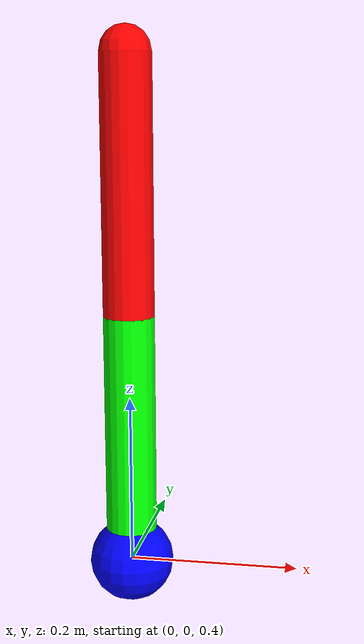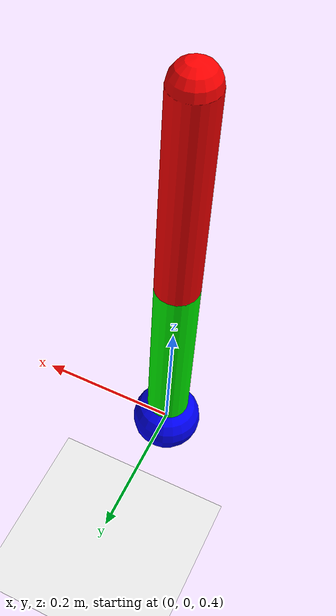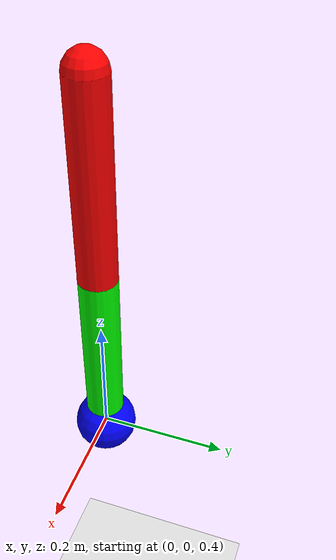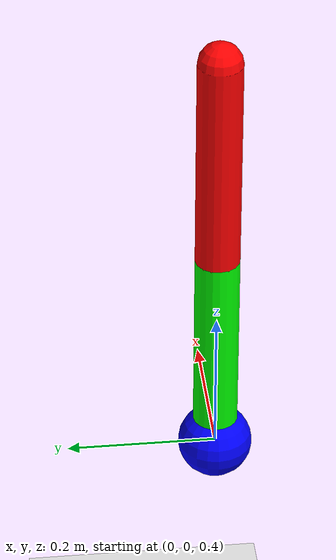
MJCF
<mujoco>
  <worldbody>
    <light diffuse=".5 .5 .5" pos="0 0 3" dir="0 0 -1"/>
    <geom type="plane" size="1 1 0.1" rgba=".9 .9 .9 1"/>

    <body name="link1" pos="0 0 1">
      <joint type="hinge" axis="1 0 0" damping="0.01"/>
      <geom type="capsule" fromto="0 0 0 0 0 -0.3" size="0.03" rgba="1 0 0 1"/>

      <body name="link2" pos="0 0 -0.3">
        <joint type="hinge" axis="1 0 0" damping="0.01"/>
        <geom type="capsule" fromto="0 0 0 0 0 -0.3" size="0.03" rgba="0 1 0 1"/>

        <body name="tip" pos="0 0 -0.3">
          <geom type="sphere" size="0.05" rgba="0 0 1 1"/>
        </body>
      </body>
    </body>
  </worldbody>
</mujoco>
